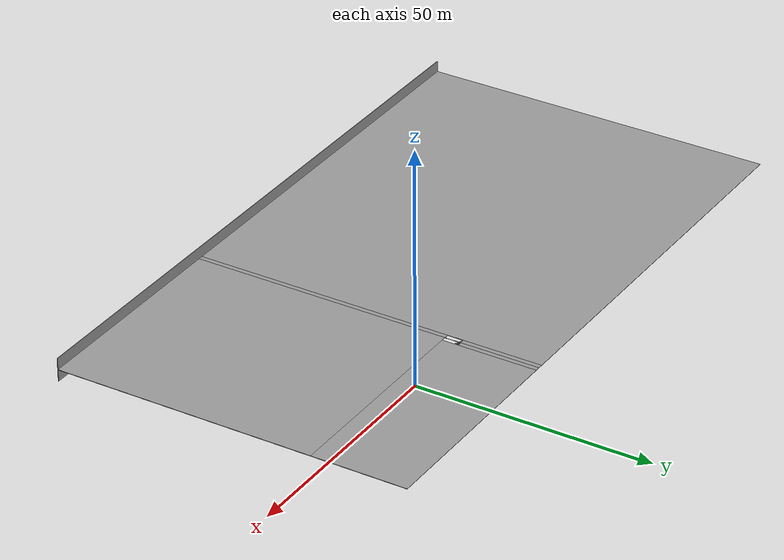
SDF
<sdf version="1.7">
 <model name="Floor_Plan_RS1">
  <pose>-35.0156 -19.3457 0 0 -0 0</pose>
  <link name="Floor_1">
   <pose>0 -0.124965 2.5 0 -0 0</pose>
   <visual name="Floor_1_Visual_0">
    <pose>-23.8629 0 0.05 0 -0 0</pose>
    <geometry><box><size>88.2742 75.889 0.1</size></box></geometry>
    <material>
     <script><uri>file://media/materials/scripts/gazebo.material</uri><name>Gazebo/Grey</name></script>
     <ambient>1 1 1 1</ambient>
    </material>
    <meta><layer>1</layer></meta>
   </visual>
   <collision name="Floor_1_Collision_0">
    <geometry><box><size>88.2742 75.889 0.1</size></box></geometry>
    <pose>-23.8629 0 0.05 0 -0 0</pose>
   </collision>
   <visual name="Floor_1_Visual_1">
    <pose>20.7753 -10.1559 0.05 0 -0 0</pose>
    <geometry><box><size>1.00207 55.5771 0.1</size></box></geometry>
    <material>
     <script><uri>file://media/materials/scripts/gazebo.material</uri><name>Gazebo/Grey</name></script>
     <ambient>1 1 1 1</ambient>
    </material>
    <meta><layer>1</layer></meta>
   </visual>
   <collision name="Floor_1_Collision_1">
    <geometry><box><size>1.00207 55.5771 0.1</size></box></geometry>
    <pose>20.7753 -10.1559 0.05 0 -0 0</pose>
   </collision>
   <visual name="Floor_1_Visual_2">
    <pose>44.6381 -10.1563 0.05 0 -0 0</pose>
    <geometry><box><size>46.7237 55.5763 0.1</size></box></geometry>
    <material>
     <script><uri>file://media/materials/scripts/gazebo.material</uri><name>Gazebo/Grey</name></script>
     <ambient>1 1 1 1</ambient>
    </material>
    <meta><layer>1</layer></meta>
   </visual>
   <collision name="Floor_1_Collision_2">
    <geometry><box><size>46.7237 55.5763 0.1</size></box></geometry>
    <pose>44.6381 -10.1563 0.05 0 -0 0</pose>
   </collision>
   <visual name="Floor_1_Visual_3">
    <pose>45.1381 27.7882 0.05 0 -0 0</pose>
    <geometry><box><size>45.7237 20.3126 0.1</size></box></geometry>
    <material>
     <script><uri>file://media/materials/scripts/gazebo.material</uri><name>Gazebo/Grey</name></script>
     <ambient>1 1 1 1</ambient>
    </material>
    <meta><layer>1</layer></meta>
   </visual>
   <collision name="Floor_1_Collision_3">
    <geometry><box><size>45.7237 20.3126 0.1</size></box></geometry>
    <pose>45.1381 27.7882 0.05 0 -0 0</pose>
   </collision>
   <visual name="Floor_1_Visual_4">
    <pose>21.2753 27.7886 0.05 0 -0 0</pose>
    <geometry><box><size>0.002066 20.3118 0.1</size></box></geometry>
    <material>
     <script><uri>file://media/materials/scripts/gazebo.material</uri><name>Gazebo/Grey</name></script>
     <ambient>1 1 1 1</ambient>
    </material>
    <meta><layer>1</layer></meta>
   </visual>
   <collision name="Floor_1_Collision_4">
    <geometry><box><size>0.002066 20.3118 0.1</size></box></geometry>
    <pose>21.2753 27.7886 0.05 0 -0 0</pose>
   </collision>
   <visual name="Floor_1_Visual_5">
    <pose>21.2753 27.7886 0.05 0 -0 0</pose>
    <geometry><box><size>0.002066 20.3118 0.1</size></box></geometry>
    <material>
     <script><uri>file://media/materials/scripts/gazebo.material</uri><name>Gazebo/Grey</name></script>
     <ambient>1 1 1 1</ambient>
    </material>
    <meta><layer>1</layer></meta>
   </visual>
   <collision name="Floor_1_Collision_5">
    <geometry><box><size>0.002066 20.3118 0.1</size></box></geometry>
    <pose>21.2753 27.7886 0.05 0 -0 0</pose>
   </collision>
   <visual name="Floor_1_Visual_6">
    <pose>21.7763 29.5382 0.05 0 -0 0</pose>
    <geometry><box><size>1 16.8126 0.1</size></box></geometry>
    <material>
     <script><uri>file://media/materials/scripts/gazebo.material</uri><name>Gazebo/Grey</name></script>
     <ambient>1 1 1 1</ambient>
    </material>
    <meta><layer>1</layer></meta>
   </visual>
   <collision name="Floor_1_Collision_6">
    <geometry><box><size>1 16.8126 0.1</size></box></geometry>
    <pose>21.7763 29.5382 0.05 0 -0 0</pose>
   </collision>
   <visual name="Floor_1_Visual_7">
    <pose>21.7763 29.5382 0.05 0 -0 0</pose>
    <geometry><box><size>1 16.8126 0.1</size></box></geometry>
    <material>
     <script><uri>file://media/materials/scripts/gazebo.material</uri><name>Gazebo/Grey</name></script>
     <ambient>1 1 1 1</ambient>
    </material>
    <meta><layer>1</layer></meta>
   </visual>
   <collision name="Floor_1_Collision_7">
    <geometry><box><size>1 16.8126 0.1</size></box></geometry>
    <pose>21.7763 29.5382 0.05 0 -0 0</pose>
   </collision>
   <visual name="Floor_1_Visual_8">
    <pose>20.7742 29.5386 0.05 0 -0 0</pose>
    <geometry><box><size>1 16.8118 0.1</size></box></geometry>
    <material>
     <script><uri>file://media/materials/scripts/gazebo.material</uri><name>Gazebo/Grey</name></script>
     <ambient>1 1 1 1</ambient>
    </material>
    <meta><layer>1</layer></meta>
   </visual>
   <collision name="Floor_1_Collision_8">
    <geometry><box><size>1 16.8118 0.1</size></box></geometry>
    <pose>20.7742 29.5386 0.05 0 -0 0</pose>
   </collision>
  </link>
  <link name="Stairs_0">
   <visual name="Stairs_0_Visual_0">
    <pose>20.7742 17.6244 0.083333 0 -0 -3.14159</pose>
    <geometry><box><size>1 0.233333 0.166667</size></box></geometry>
    <material>
     <script><uri>file://media/materials/scripts/gazebo.material</uri><name>Gazebo/Grey</name></script>
     <ambient>1 1 1 1</ambient>
    </material>
    <meta><layer>0</layer></meta>
   </visual>
   <collision name="Stairs_0_Collision_0">
    <geometry><box><size>1 0.233333 0.166667</size></box></geometry>
    <pose>20.7742 17.6244 0.083333 0 -0 -3.14159</pose>
   </collision>
   <visual name="Stairs_0_Visual_1">
    <pose>20.7742 17.8577 0.25 0 -0 -3.14159</pose>
    <geometry><box><size>1 0.233333 0.166667</size></box></geometry>
    <material>
     <script><uri>file://media/materials/scripts/gazebo.material</uri><name>Gazebo/Grey</name></script>
     <ambient>1 1 1 1</ambient>
    </material>
    <meta><layer>0</layer></meta>
   </visual>
   <collision name="Stairs_0_Collision_1">
    <geometry><box><size>1 0.233333 0.166667</size></box></geometry>
    <pose>20.7742 17.8577 0.25 0 -0 -3.14159</pose>
   </collision>
   <visual name="Stairs_0_Visual_2">
    <pose>20.7742 18.091 0.416667 0 -0 -3.14159</pose>
    <geometry><box><size>1 0.233333 0.166667</size></box></geometry>
    <material>
     <script><uri>file://media/materials/scripts/gazebo.material</uri><name>Gazebo/Grey</name></script>
     <ambient>1 1 1 1</ambient>
    </material>
    <meta><layer>0</layer></meta>
   </visual>
   <collision name="Stairs_0_Collision_2">
    <geometry><box><size>1 0.233333 0.166667</size></box></geometry>
    <pose>20.7742 18.091 0.416667 0 -0 -3.14159</pose>
   </collision>
   <visual name="Stairs_0_Visual_3">
    <pose>20.7742 18.3244 0.583333 0 -0 -3.14159</pose>
    <geometry><box><size>1 0.233333 0.166667</size></box></geometry>
    <material>
     <script><uri>file://media/materials/scripts/gazebo.material</uri><name>Gazebo/Grey</name></script>
     <ambient>1 1 1 1</ambient>
    </material>
    <meta><layer>0</layer></meta>
   </visual>
   <collision name="Stairs_0_Collision_3">
    <geometry><box><size>1 0.233333 0.166667</size></box></geometry>
    <pose>20.7742 18.3244 0.583333 0 -0 -3.14159</pose>
   </collision>
   <visual name="Stairs_0_Visual_4">
    <pose>20.7742 18.5577 0.75 0 -0 -3.14159</pose>
    <geometry><box><size>1 0.233333 0.166667</size></box></geometry>
    <material>
     <script><uri>file://media/materials/scripts/gazebo.material</uri><name>Gazebo/Grey</name></script>
     <ambient>1 1 1 1</ambient>
    </material>
    <meta><layer>0</layer></meta>
   </visual>
   <collision name="Stairs_0_Collision_4">
    <geometry><box><size>1 0.233333 0.166667</size></box></geometry>
    <pose>20.7742 18.5577 0.75 0 -0 -3.14159</pose>
   </collision>
   <visual name="Stairs_0_Visual_5">
    <pose>20.7742 18.791 0.916667 0 -0 -3.14159</pose>
    <geometry><box><size>1 0.233333 0.166667</size></box></geometry>
    <material>
     <script><uri>file://media/materials/scripts/gazebo.material</uri><name>Gazebo/Grey</name></script>
     <ambient>1 1 1 1</ambient>
    </material>
    <meta><layer>0</layer></meta>
   </visual>
   <collision name="Stairs_0_Collision_5">
    <geometry><box><size>1 0.233333 0.166667</size></box></geometry>
    <pose>20.7742 18.791 0.916667 0 -0 -3.14159</pose>
   </collision>
   <visual name="Stairs_0_Visual_6">
    <pose>20.7742 19.0244 1.08333 0 -0 -3.14159</pose>
    <geometry><box><size>1 0.233333 0.166667</size></box></geometry>
    <material>
     <script><uri>file://media/materials/scripts/gazebo.material</uri><name>Gazebo/Grey</name></script>
     <ambient>1 1 1 1</ambient>
    </material>
    <meta><layer>0</layer></meta>
   </visual>
   <collision name="Stairs_0_Collision_6">
    <geometry><box><size>1 0.233333 0.166667</size></box></geometry>
    <pose>20.7742 19.0244 1.08333 0 -0 -3.14159</pose>
   </collision>
   <visual name="Stairs_0_Visual_7">
    <pose>20.7742 19.2577 1.25 0 -0 -3.14159</pose>
    <geometry><box><size>1 0.233333 0.166667</size></box></geometry>
    <material>
     <script><uri>file://media/materials/scripts/gazebo.material</uri><name>Gazebo/Grey</name></script>
     <ambient>1 1 1 1</ambient>
    </material>
    <meta><layer>0</layer></meta>
   </visual>
   <collision name="Stairs_0_Collision_7">
    <geometry><box><size>1 0.233333 0.166667</size></box></geometry>
    <pose>20.7742 19.2577 1.25 0 -0 -3.14159</pose>
   </collision>
   <visual name="Stairs_0_Visual_8">
    <pose>20.7742 19.491 1.41667 0 -0 -3.14159</pose>
    <geometry><box><size>1 0.233333 0.166667</size></box></geometry>
    <material>
     <script><uri>file://media/materials/scripts/gazebo.material</uri><name>Gazebo/Grey</name></script>
     <ambient>1 1 1 1</ambient>
    </material>
    <meta><layer>0</layer></meta>
   </visual>
   <collision name="Stairs_0_Collision_8">
    <geometry><box><size>1 0.233333 0.166667</size></box></geometry>
    <pose>20.7742 19.491 1.41667 0 -0 -3.14159</pose>
   </collision>
   <visual name="Stairs_0_Visual_9">
    <pose>20.7742 19.7244 1.58333 0 -0 -3.14159</pose>
    <geometry><box><size>1 0.233333 0.166667</size></box></geometry>
    <material>
     <script><uri>file://media/materials/scripts/gazebo.material</uri><name>Gazebo/Grey</name></script>
     <ambient>1 1 1 1</ambient>
    </material>
    <meta><layer>0</layer></meta>
   </visual>
   <collision name="Stairs_0_Collision_9">
    <geometry><box><size>1 0.233333 0.166667</size></box></geometry>
    <pose>20.7742 19.7244 1.58333 0 -0 -3.14159</pose>
   </collision>
   <visual name="Stairs_0_Visual_10">
    <pose>20.7742 19.9577 1.75 0 -0 -3.14159</pose>
    <geometry><box><size>1 0.233333 0.166667</size></box></geometry>
    <material>
     <script><uri>file://media/materials/scripts/gazebo.material</uri><name>Gazebo/Grey</name></script>
     <ambient>1 1 1 1</ambient>
    </material>
    <meta><layer>0</layer></meta>
   </visual>
   <collision name="Stairs_0_Collision_10">
    <geometry><box><size>1 0.233333 0.166667</size></box></geometry>
    <pose>20.7742 19.9577 1.75 0 -0 -3.14159</pose>
   </collision>
   <visual name="Stairs_0_Visual_11">
    <pose>20.7742 20.191 1.91667 0 -0 -3.14159</pose>
    <geometry><box><size>1 0.233333 0.166667</size></box></geometry>
    <material>
     <script><uri>file://media/materials/scripts/gazebo.material</uri><name>Gazebo/Grey</name></script>
     <ambient>1 1 1 1</ambient>
    </material>
    <meta><layer>0</layer></meta>
   </visual>
   <collision name="Stairs_0_Collision_11">
    <geometry><box><size>1 0.233333 0.166667</size></box></geometry>
    <pose>20.7742 20.191 1.91667 0 -0 -3.14159</pose>
   </collision>
   <visual name="Stairs_0_Visual_12">
    <pose>20.7742 20.4244 2.08333 0 -0 -3.14159</pose>
    <geometry><box><size>1 0.233333 0.166667</size></box></geometry>
    <material>
     <script><uri>file://media/materials/scripts/gazebo.material</uri><name>Gazebo/Grey</name></script>
     <ambient>1 1 1 1</ambient>
    </material>
    <meta><layer>0</layer></meta>
   </visual>
   <collision name="Stairs_0_Collision_12">
    <geometry><box><size>1 0.233333 0.166667</size></box></geometry>
    <pose>20.7742 20.4244 2.08333 0 -0 -3.14159</pose>
   </collision>
   <visual name="Stairs_0_Visual_13">
    <pose>20.7742 20.6577 2.25 0 -0 -3.14159</pose>
    <geometry><box><size>1 0.233333 0.166667</size></box></geometry>
    <material>
     <script><uri>file://media/materials/scripts/gazebo.material</uri><name>Gazebo/Grey</name></script>
     <ambient>1 1 1 1</ambient>
    </material>
    <meta><layer>0</layer></meta>
   </visual>
   <collision name="Stairs_0_Collision_13">
    <geometry><box><size>1 0.233333 0.166667</size></box></geometry>
    <pose>20.7742 20.6577 2.25 0 -0 -3.14159</pose>
   </collision>
   <visual name="Stairs_0_Visual_14">
    <pose>20.7742 20.891 2.41667 0 -0 -3.14159</pose>
    <geometry><box><size>1 0.233333 0.166667</size></box></geometry>
    <material>
     <script><uri>file://media/materials/scripts/gazebo.material</uri><name>Gazebo/Grey</name></script>
     <ambient>1 1 1 1</ambient>
    </material>
    <meta><layer>0</layer></meta>
   </visual>
   <collision name="Stairs_0_Collision_14">
    <geometry><box><size>1 0.233333 0.166667</size></box></geometry>
    <pose>20.7742 20.891 2.41667 0 -0 -3.14159</pose>
   </collision>
  </link>
  <link name="Wall_20">
   <collision name="Wall_20_Collision">
    <geometry><box><size>136 0.15 2.5</size></box></geometry>
    <pose>0 0 1.25 0 -0 0</pose>
   </collision>
   <visual name="Wall_20_Visual">
    <pose>0 0 1.25 0 -0 0</pose>
    <geometry><box><size>136 0.15 2.5</size></box></geometry>
    <material>
     <script><uri>file://media/materials/scripts/gazebo.material</uri><name>Gazebo/Grey</name></script>
     <ambient>1 1 1 1</ambient>
    </material>
    <meta><layer>1</layer></meta>
   </visual>
   <pose>0 -37.9944 2.5 0 -0 3.14159</pose>
  </link>
  <link name="Wall_7">
   <collision name="Wall_7_Collision">
    <geometry><box><size>136 0.15 2.5</size></box></geometry>
    <pose>0 0 1.25 0 -0 0</pose>
   </collision>
   <visual name="Wall_7_Visual">
    <pose>0 0 1.25 0 -0 0</pose>
    <geometry><box><size>136 0.15 2.5</size></box></geometry>
    <material>
     <script><uri>file://media/materials/scripts/gazebo.material</uri><name>Gazebo/Grey</name></script>
     <ambient>1 1 1 1</ambient>
    </material>
    <meta><layer>0</layer></meta>
   </visual>
   <pose>0 -37.9944 0 0 -0 3.14159</pose>
  </link>
  <static>1</static>
 </model>
</sdf>
